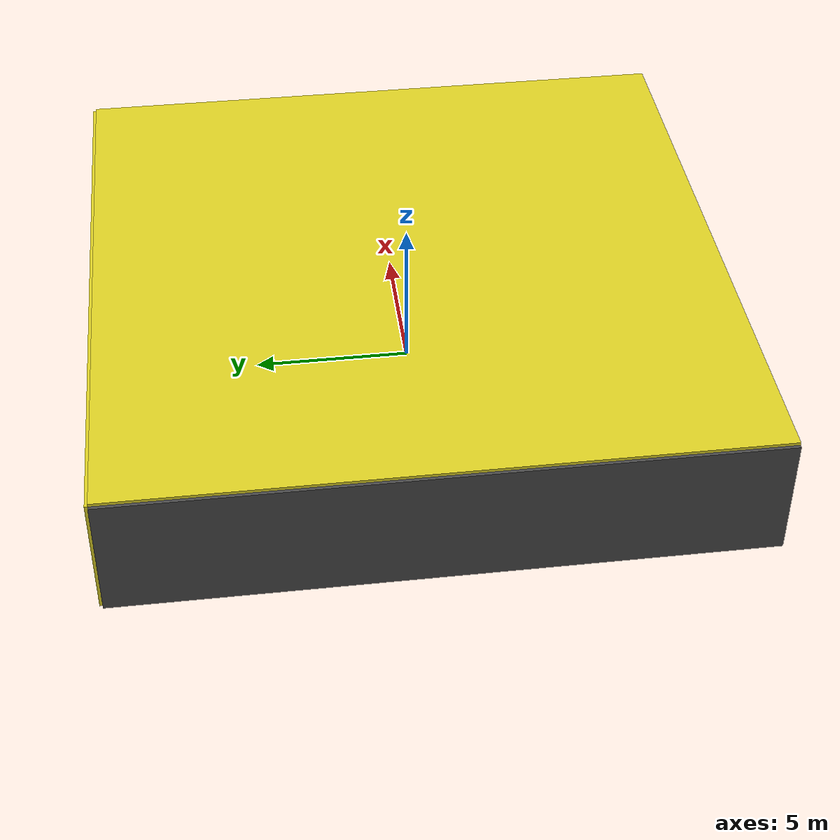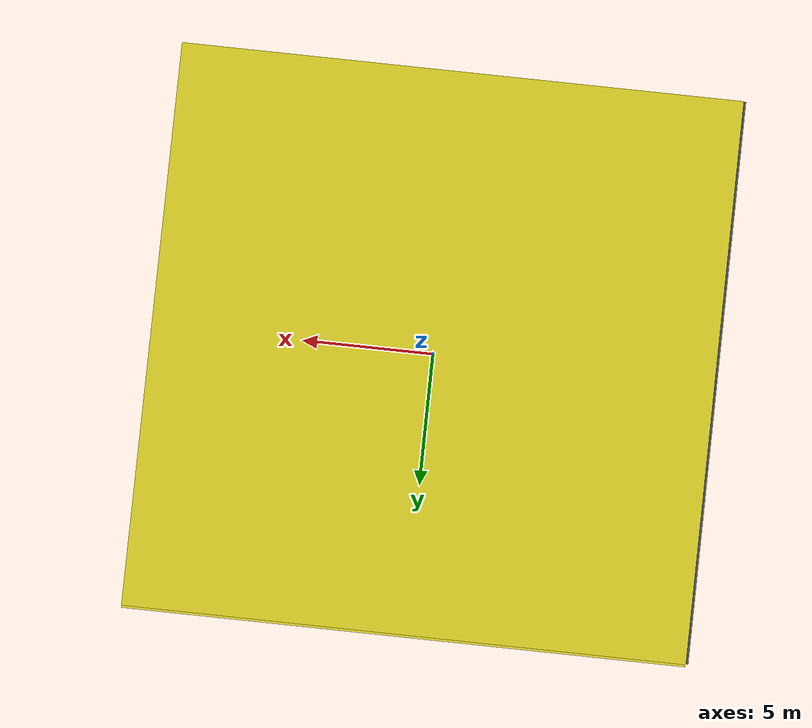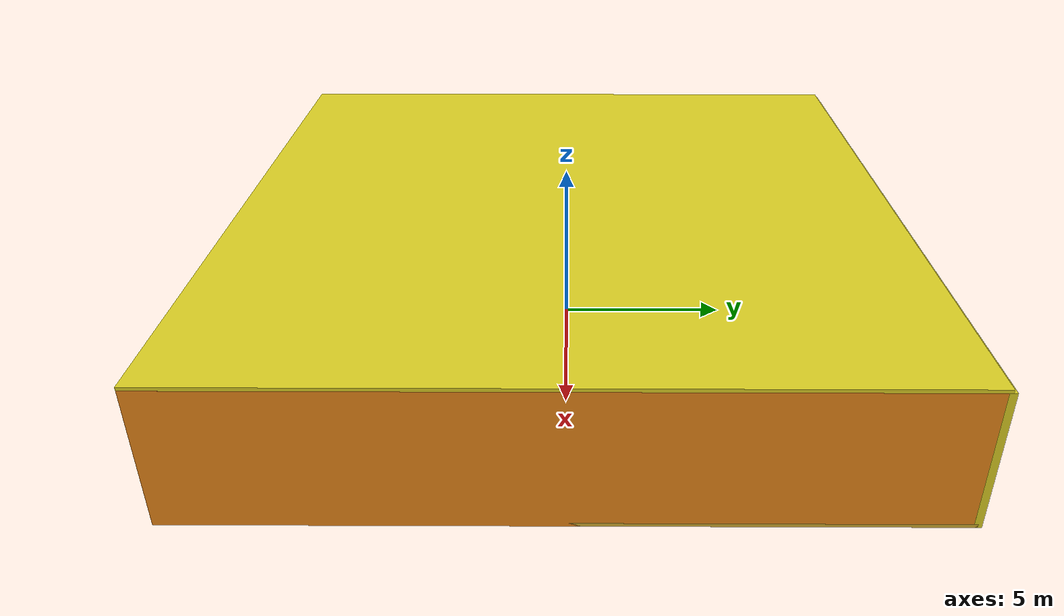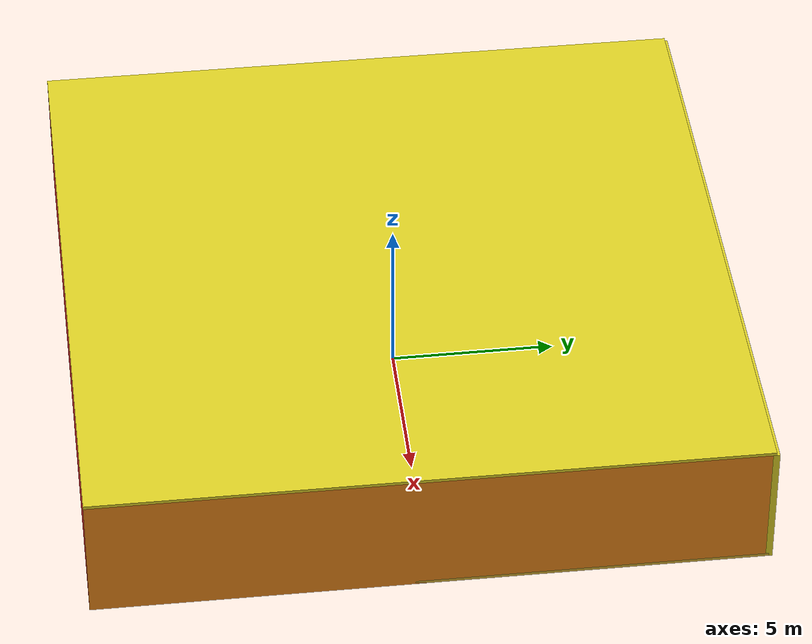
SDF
<sdf version="1.4">
 <world name="default">
  <physics type="ode">
   <max_step_size>0.001</max_step_size>
   <real_time_factor>1</real_time_factor>
   <real_time_update_rate>1000</real_time_update_rate>
   <gravity>0 0 -9.8</gravity>
  </physics>
  <scene><ambient>0.4 0.4 0.4 1</ambient><background>0.7 0.7 0.7 1</background><shadows>1</shadows></scene>
  <model name="Surrounding">
   <static>1</static>
   <link name="Ceiling">
    <collision name="Ceiling_Collision"><geometry><box><size>20 20 0.1</size></box></geometry></collision>
    <visual name="Ceiling_Visual">
     <geometry><box><size>20 20 0.1</size></box></geometry>
     <material>
      <script><uri>file://media/materials/scripts/gazebo.material</uri><name>Gazebo/YellowGlow</name></script>
     </material>
    </visual>
    <pose>0 0 4.05 0 0 0</pose>
   </link>
   <link name="Wall_South">
    <collision name="Wall_South_Collision">
     <geometry><box><size>20 0 4</size></box></geometry>
     <pose>0 0 2 0 -0 0</pose>
    </collision>
    <visual name="Wall_South_Visual">
     <pose>0 0 2 0 -0 0</pose>
     <geometry><box><size>20 0 4</size></box></geometry>
     <material>
      <script><uri>file://media/materials/scripts/gazebo.material</uri><name>Gazebo/RedGlow</name></script>
     </material>
    </visual>
    <velocity_decay><linear>0</linear><angular>0</angular></velocity_decay>
    <pose>0 -10 0 0 -0 0</pose>
   </link>
   <link name="Wall_East">
    <collision name="Wall_21_Collision">
     <geometry><box><size>20 0 4</size></box></geometry>
     <pose>0 0 2 0 -0 0</pose>
    </collision>
    <visual name="Wall_21_Visual">
     <pose>0 0 2 0 -0 0</pose>
     <geometry><box><size>20 0 4</size></box></geometry>
     <material>
      <script><uri>file://media/materials/scripts/gazebo.material</uri><name>Gazebo/Orange</name></script>
     </material>
    </visual>
    <velocity_decay><linear>0</linear><angular>0</angular></velocity_decay>
    <pose>10 0 0 0 -0 1.5708</pose>
   </link>
   <link name="Wall_North">
    <collision name="Wall_22_Collision">
     <geometry><box><size>20 0.2 4</size></box></geometry>
     <pose>0 0 2 0 -0 0</pose>
    </collision>
    <visual name="Wall_22_Visual">
     <pose>0 0 2 0 -0 0</pose>
     <geometry><box><size>20 0.2 4</size></box></geometry>
     <material>
      <script><uri>file://media/materials/scripts/gazebo.material</uri><name>Gazebo/YellowGlow</name></script>
     </material>
    </visual>
    <velocity_decay><linear>0</linear><angular>0</angular></velocity_decay>
    <pose>0 10 0 0 -0 0</pose>
   </link>
   <link name="Wall_West">
    <collision name="Wall_23_Collision">
     <geometry><box><size>20 0.2 4</size></box></geometry>
     <pose>0 0 2 0 -0 0</pose>
    </collision>
    <visual name="Wall_23_Visual">
     <pose>0 0 2 0 -0 0</pose>
     <geometry><box><size>20 0.2 4</size></box></geometry>
     <material>
      <script><uri>file://media/materials/scripts/gazebo.material</uri><name>Gazebo/DarkGrey</name></script>
     </material>
    </visual>
    <velocity_decay><linear>0</linear><angular>0</angular></velocity_decay>
    <pose>-10 0 0 0 0 -1.5708</pose>
   </link>
   <link name="Ground_link">
    <collision name="collision">
     <pose>0 0 .05 0 -0 0</pose>
     <geometry><box><size>20 20 0.1</size></box></geometry>
    </collision>
    <visual name="visual">
     <pose>0 0 .05 0 -0 0</pose>
     <geometry><box><size>20 20 0.1</size></box></geometry>
     <material>
      <script><uri>file://media/materials/scripts/gazebo.material</uri><name>Gazebo/Gold</name></script>
     </material>
    </visual>
   </link>
   <static>1</static>
  </model>
  <spherical_coordinates>
   <surface_model>EARTH_WGS84</surface_model>
   <latitude_deg>0</latitude_deg>
   <longitude_deg>0</longitude_deg>
   <elevation>0</elevation>
   <heading_deg>0</heading_deg>
  </spherical_coordinates>
  <light name="lightball_0" type="diffuse">
   <diffuse>0.8 0.8 0.8 1</diffuse>
   <specular>0.2 0.2 0.2 1</specular>
   <attenuation>
    <range>100</range>
    <constant>0.7</constant>
    <linear>0.01</linear>
    <quadratic>0.001</quadratic>
   </attenuation>
   <direction>-0.5 0.1 -0.9</direction>
   <pose>-9.70598810752 -1.70735436717 1.67869949601 0 0 0</pose>
  </light>
  <light name="lightball_1" type="diffuse">
   <diffuse>0.8 0.8 0.8 1</diffuse>
   <specular>0.2 0.2 0.2 1</specular>
   <attenuation>
    <range>100</range>
    <constant>0.7</constant>
    <linear>0.01</linear>
    <quadratic>0.001</quadratic>
   </attenuation>
   <direction>-0.5 0.1 -0.9</direction>
   <pose>0.332530182632 9.15980961731 2.98855144321 0 0 0</pose>
  </light>
  <light name="lightball_2" type="diffuse">
   <diffuse>0.8 0.8 0.8 1</diffuse>
   <specular>0.2 0.2 0.2 1</specular>
   <attenuation>
    <range>100</range>
    <constant>0.7</constant>
    <linear>0.01</linear>
    <quadratic>0.001</quadratic>
   </attenuation>
   <direction>-0.5 0.1 -0.9</direction>
   <pose>3.60523740833 5.98823511219 0.617096265745 0 0 0</pose>
  </light>
  <light name="lightball_3" type="diffuse">
   <diffuse>0.8 0.8 0.8 1</diffuse>
   <specular>0.2 0.2 0.2 1</specular>
   <attenuation>
    <range>100</range>
    <constant>0.7</constant>
    <linear>0.01</linear>
    <quadratic>0.001</quadratic>
   </attenuation>
   <direction>-0.5 0.1 -0.9</direction>
   <pose>2.48269898907 6.36005982692 1.74172121137 0 0 0</pose>
  </light>
  <light name="lightball_4" type="diffuse">
   <diffuse>0.8 0.8 0.8 1</diffuse>
   <specular>0.2 0.2 0.2 1</specular>
   <attenuation>
    <range>100</range>
    <constant>0.7</constant>
    <linear>0.01</linear>
    <quadratic>0.001</quadratic>
   </attenuation>
   <direction>-0.5 0.1 -0.9</direction>
   <pose>-7.97369313141 6.29659350251 3.63942594422 0 0 0</pose>
  </light>
  <light name="lightball_5" type="diffuse">
   <diffuse>0.8 0.8 0.8 1</diffuse>
   <specular>0.2 0.2 0.2 1</specular>
   <attenuation>
    <range>100</range>
    <constant>0.7</constant>
    <linear>0.01</linear>
    <quadratic>0.001</quadratic>
   </attenuation>
   <direction>-0.5 0.1 -0.9</direction>
   <pose>7.86275476035 2.10664338107 2.07569507082 0 0 0</pose>
  </light>
  <light name="lightball_6" type="diffuse">
   <diffuse>0.8 0.8 0.8 1</diffuse>
   <specular>0.2 0.2 0.2 1</specular>
   <attenuation>
    <range>100</range>
    <constant>0.7</constant>
    <linear>0.01</linear>
    <quadratic>0.001</quadratic>
   </attenuation>
   <direction>-0.5 0.1 -0.9</direction>
   <pose>-9.28041842447 -7.77240759229 0.53095504949 0 0 0</pose>
  </light>
  <light name="lightball_7" type="diffuse">
   <diffuse>0.8 0.8 0.8 1</diffuse>
   <specular>0.2 0.2 0.2 1</specular>
   <attenuation>
    <range>100</range>
    <constant>0.7</constant>
    <linear>0.01</linear>
    <quadratic>0.001</quadratic>
   </attenuation>
   <direction>-0.5 0.1 -0.9</direction>
   <pose>-2.9339285975 5.18137263752 1.09894493747 0 0 0</pose>
  </light>
  <light name="lightball_8" type="diffuse">
   <diffuse>0.8 0.8 0.8 1</diffuse>
   <specular>0.2 0.2 0.2 1</specular>
   <attenuation>
    <range>100</range>
    <constant>0.7</constant>
    <linear>0.01</linear>
    <quadratic>0.001</quadratic>
   </attenuation>
   <direction>-0.5 0.1 -0.9</direction>
   <pose>-1.56324374703 8.97747575202 1.0705268493 0 0 0</pose>
  </light>
  <light name="lightball_9" type="diffuse">
   <diffuse>0.8 0.8 0.8 1</diffuse>
   <specular>0.2 0.2 0.2 1</specular>
   <attenuation>
    <range>100</range>
    <constant>0.7</constant>
    <linear>0.01</linear>
    <quadratic>0.001</quadratic>
   </attenuation>
   <direction>-0.5 0.1 -0.9</direction>
   <pose>-7.62981527227 4.38736855793 2.70143543425 0 0 0</pose>
  </light>
  <include><uri>model://cabinet</uri><pose>-1.13333211302 4.42928159303 0 0 0 2.94899831947</pose></include>
  <include><uri>model://cabinet</uri><pose>-0.966958504317 7.13534583832 0 0 0 1.56544783788</pose></include>
  <include><uri>model://cabinet</uri><pose>3.89478365022 -4.12949698343 0 0 0 2.27900186038</pose></include>
  <include><uri>model://table</uri><pose>4.74453208478 1.88746927882 0 0 0 2.20905413717</pose></include>
  <include><uri>model://cabinet</uri><pose>7.89715803796 -2.00295994319 0 0 0 1.38798568584</pose></include>
 </world>
</sdf>

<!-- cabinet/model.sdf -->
<sdf version="1.5">
  <model name="cabinet">
    <static>true</static>
    <link name="cabinet_bottom_plate">
      <inertial>
        <pose>0 0 -1 0 0 0</pose>
        <inertia>
          <ixx>2.050000</ixx>
          <ixy>0</ixy>
          <ixz>0</ixz>
          <iyy>2.050000</iyy>
          <iyz>0</iyz>
          <izz>2.050000</izz>
        </inertia>
        <mass>25.000000</mass>
      </inertial>
      <collision name="cabinet_bottom_plate_geom">
        <pose>0 0 0.010000 0 0 0</pose>
        <geometry>
          <box>
            <size>0.450000 0.450000 0.020000</size>
          </box>
        </geometry>
      </collision>
      <visual name="cabinet_bottom_plate_geom_visual">
        <pose>0 0 0.010000 0 0 0</pose>
        <geometry>
          <box>
            <size>0.450000 0.450000 0.020000</size>
          </box>
        </geometry>
        <material>
          <script>
            <uri>model://media/materials/scripts/gazebo.material</uri>
            <name>Gazebo/Wood</name>
          </script>
        </material>
      </visual>
      <collision name="cabinet_bottom_plate_geom_cabinet_back_plate">
        <pose>0.235000 0 0.510000 0 0 0</pose>
        <geometry>
          <box>
            <size>0.020000 0.450000 1.020000</size>
          </box>
        </geometry>
      </collision>
      <visual name="cabinet_bottom_plate_geom_cabinet_back_plate_visual">
        <pose>0.235000 0 0.510000 0 0 0</pose>
        <geometry>
          <box>
            <size>0.020000 0.450000 1.020000</size>
          </box>
        </geometry>
        <material>
          <script>
            <uri>model://media/materials/scripts/gazebo.material</uri>
            <name>Gazebo/Wood</name>
          </script>
        </material>
      </visual>
      <collision name="cabinet_bottom_plate_geom_cabinet_left_plate">
        <pose>0 0.235000 0.510000 0 0 0</pose>
        <geometry>
          <box>
            <size>0.450000 0.020000 1.020000</size>
          </box>
        </geometry>
      </collision>
      <visual name="cabinet_bottom_plate_geom_cabinet_left_plate_visual">
        <pose>0 0.235000 0.510000 0 0 0</pose>
        <geometry>
          <box>
            <size>0.450000 0.020000 1.020000</size>
          </box>
        </geometry>
        <material>
          <script>
            <uri>model://media/materials/scripts/gazebo.material</uri>
            <name>Gazebo/Wood</name>
          </script>
        </material>
      </visual>
      <collision name="cabinet_bottom_plate_geom_cabinet_middle_plate">
        <pose>0 0 0.510000 0 0 0</pose>
        <geometry>
          <box>
            <size>0.450000 0.450000 0.020000</size>
          </box>
        </geometry>
      </collision>
      <visual name="cabinet_bottom_plate_geom_cabinet_middle_plate_visual">
        <pose>0 0 0.510000 0 0 0</pose>
        <geometry>
          <box>
            <size>0.450000 0.450000 0.020000</size>
          </box>
        </geometry>
        <material>
          <script>
            <uri>model://media/materials/scripts/gazebo.material</uri>
            <name>Gazebo/Wood</name>
          </script>
        </material>
      </visual>
      <collision name="cabinet_bottom_plate_geom_cabinet_right_plate">
        <pose>0 -0.235000 0.510000 0 0 0</pose>
        <geometry>
          <box>
            <size>0.450000 0.020000 1.020000</size>
          </box>
        </geometry>
      </collision>
      <visual name="cabinet_bottom_plate_geom_cabinet_right_plate_visual">
        <pose>0 -0.235000 0.510000 0 0 0</pose>
        <geometry>
          <box>
            <size>0.450000 0.020000 1.020000</size>
          </box>
        </geometry>
        <material>
          <script>
            <uri>model://media/materials/scripts/gazebo.material</uri>
            <name>Gazebo/Wood</name>
          </script>
        </material>
      </visual>
      <collision name="cabinet_bottom_plate_geom_cabinet_top_plate">
        <pose>0 0 1.010000 0 0 0</pose>
        <geometry>
          <box>
            <size>0.450000 0.450000 0.020000</size>
          </box>
        </geometry>
      </collision>
      <visual name="cabinet_bottom_plate_geom_cabinet_top_plate_visual">
        <pose>0 0 1.010000 0 0 0</pose>
        <geometry>
          <box>
            <size>0.450000 0.450000 0.020000</size>
          </box>
        </geometry>
        <material>
          <script>
            <uri>model://media/materials/scripts/gazebo.material</uri>
            <name>Gazebo/Wood</name>
          </script>
        </material>
      </visual>
    </link>
  </model>
</sdf>

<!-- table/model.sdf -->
<sdf version="1.5">
  <model name="table">
    <static>true</static>
    <link name="link">
      <collision name="surface">
        <pose>0 0 1.0 0 0 0</pose>
        <geometry>
          <box>
            <size>1.5 0.8 0.03</size>
          </box>
        </geometry>
        <surface>
          <friction>
            <ode>
              <mu>0.6</mu>
              <mu2>0.6</mu2>
            </ode>
          </friction>
        </surface>
      </collision>
      <visual name="visual1">
        <pose>0 0 1.0 0 0 0</pose>
        <geometry>
          <box>
            <size>1.5 0.8 0.03</size>
          </box>
        </geometry>
        <material>
          <script>
            <uri>model://media/materials/scripts/gazebo.material</uri>
            <name>Gazebo/Wood</name>
          </script>
        </material>
      </visual>
      <collision name="front_left_leg">
        <pose>0.68 0.38 0.5 0 0 0</pose>
        <geometry>
          <cylinder>
            <radius>0.02</radius>
            <length>1.0</length>
          </cylinder>
        </geometry>
      </collision>
      <visual name="front_left_leg">
        <pose>0.68 0.38 0.5 0 0 0</pose>
        <geometry>
          <cylinder>
            <radius>0.02</radius>
            <length>1.0</length>
          </cylinder>
        </geometry>
        <material>
          <script>
            <uri>model://media/materials/scripts/gazebo.material</uri>
            <name>Gazebo/Grey</name>
          </script>
        </material>
      </visual>
      <collision name="front_right_leg">
        <pose>0.68 -0.38 0.5 0 0 0</pose>
        <geometry>
          <cylinder>
            <radius>0.02</radius>
            <length>1.0</length>
          </cylinder>
        </geometry>
      </collision>
      <visual name="front_right_leg">
        <pose>0.68 -0.38 0.5 0 0 0</pose>
        <geometry>
          <cylinder>
            <radius>0.02</radius>
            <length>1.0</length>
          </cylinder>
        </geometry>
        <material>
          <script>
            <uri>model://media/materials/scripts/gazebo.material</uri>
            <name>Gazebo/Grey</name>
          </script>
        </material>
      </visual>
      <collision name="back_right_leg">
        <pose>-0.68 -0.38 0.5 0 0 0</pose>
        <geometry>
          <cylinder>
            <radius>0.02</radius>
            <length>1.0</length>
          </cylinder>
        </geometry>
      </collision>
      <visual name="back_right_leg">
        <pose>-0.68 -0.38 0.5 0 0 0</pose>
        <geometry>
          <cylinder>
            <radius>0.02</radius>
            <length>1.0</length>
          </cylinder>
        </geometry>
        <material>
          <script>
            <uri>model://media/materials/scripts/gazebo.material</uri>
            <name>Gazebo/Grey</name>
          </script>
        </material>
      </visual>
      <collision name="back_left_leg">
        <pose>-0.68 0.38 0.5 0 0 0</pose>
        <geometry>
          <cylinder>
            <radius>0.02</radius>
            <length>1.0</length>
          </cylinder>
        </geometry>
      </collision>
      <visual name="back_left_leg">
        <pose>-0.68 0.38 0.5 0 0 0</pose>
        <geometry>
          <cylinder>
            <radius>0.02</radius>
            <length>1.0</length>
          </cylinder>
        </geometry>
        <material>
          <script>
            <uri>model://media/materials/scripts/gazebo.material</uri>
            <name>Gazebo/Grey</name>
          </script>
        </material>
      </visual>
    </link>
  </model>
</sdf>
